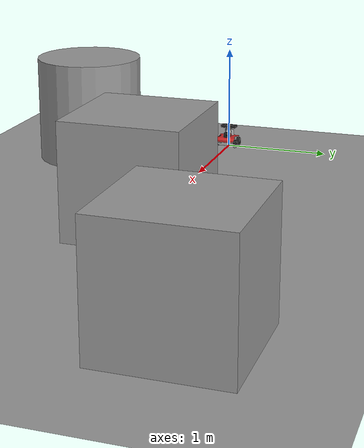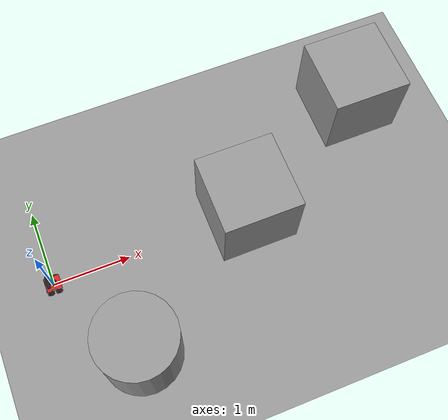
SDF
<sdf version="1.7">
 <world name="default">
  <light name="sun" type="directional">
   <pose>0 0 10 0 -0 0</pose>
   <diffuse>0.8 0.8 0.8 1</diffuse>
   <specular>0.2 0.2 0.2 1</specular>
   <attenuation>
    <range>1000</range>
    <constant>0.9</constant>
    <linear>0.01</linear>
    <quadratic>0.001</quadratic>
   </attenuation>
   <direction>0.5 0.1 -0.9</direction>
   <spot><inner_angle>0</inner_angle><outer_angle>0</outer_angle><falloff>0</falloff></spot>
  </light>
  <scene><ambient>0.4 0.4 0.4 1</ambient><background>0.7 0.7 0.7 1</background><shadows>1</shadows></scene>
  <physics type="ode">
   <max_step_size>0.01</max_step_size>
   <real_time_factor>1</real_time_factor>
   <real_time_update_rate>100</real_time_update_rate>
  </physics>
  <model name="ground_plane_0">
   <static>1</static>
   <link name="link">
    <collision name="collision">
     <geometry><plane><normal>0 0 1</normal><size>100 100</size></plane></geometry>
     <surface><friction><ode><mu>100</mu><mu2>50</mu2></ode></friction></surface>
    </collision>
    <visual name="visual">
     <cast_shadows>0</cast_shadows>
     <geometry><plane><normal>0 0 1</normal><size>100 100</size></plane></geometry>
     <material>
      <script><uri>file://media/materials/scripts/gazebo.material</uri><name>Gazebo/Grey</name></script>
     </material>
    </visual>
    <velocity_decay><linear>0</linear><angular>0</angular></velocity_decay>
   </link>
   <pose>0.497681 0 0 0 -0 0</pose>
  </model>
  <gravity>0 0 -9.8</gravity>
  <magnetic_field>6e-06 2.3e-05 -4.2e-05</magnetic_field>
  <atmosphere type="adiabatic"/>
  <spherical_coordinates>
   <surface_model>EARTH_WGS84</surface_model>
   <latitude_deg>0</latitude_deg>
   <longitude_deg>0</longitude_deg>
   <elevation>0</elevation>
   <heading_deg>0</heading_deg>
  </spherical_coordinates>
  <model name="rosbot">
   <link name="base_link">
    <inertial>
     <pose>-0 0 0.04003 0 -0 0</pose>
     <mass>5.01002</mass>
     <inertia>
      <ixx>0.0100024</ixx>
      <ixy>0.01</ixy>
      <ixz>3.8397e-08</ixz>
      <iyy>0.0100025</iyy>
      <iyz>0.01</iyz>
      <izz>0.01</izz>
     </inertia>
    </inertial>
    <collision name="base_link_fixed_joint_lump__body_link_collision">
     <pose>0 0 0.02 0 -0 0</pose>
     <geometry><box><size>0.2 0.15 0.04</size></box></geometry>
    </collision>
    <collision name="base_link_fixed_joint_lump__camera_link_collision_1">
     <pose>-0.01 0 0.18 0 -0 0</pose>
     <geometry><box><size>0.001 0.001 0.001</size></box></geometry>
    </collision>
    <collision name="base_link_fixed_joint_lump__laser_collision_2">
     <pose>0.02 0 0.058 1.5707 0 1.56682</pose>
     <geometry>
      <mesh>
       <scale>0.001 0.001 0.001</scale>
       <uri>/home/user/catkin_ws/src/rosbot_ros/src/rosbot_description/meshes/rplidar.stl</uri>
      </mesh>
     </geometry>
    </collision>
    <visual name="base_link_fixed_joint_lump__body_link_visual">
     <pose>0 0 -0.02 1.5707 0 1.5707</pose>
     <geometry>
      <mesh>
       <scale>0.001 0.001 0.001</scale>
       <uri>/home/user/catkin_ws/src/rosbot_ros/src/rosbot_description/meshes/box.stl</uri>
      </mesh>
     </geometry>
    </visual>
    <visual name="base_link_fixed_joint_lump__camera_link_visual_1">
     <pose>-0.04 0 0.15 1.5707 0 1.5707</pose>
     <geometry>
      <mesh>
       <scale>0.001 0.001 0.001</scale>
       <uri>/home/user/catkin_ws/src/rosbot_ros/src/rosbot_description/meshes/astra.stl</uri>
      </mesh>
     </geometry>
     <material>
      <script><name>Gazebo/Black</name><uri>file://media/materials/scripts/gazebo.material</uri></script>
     </material>
    </visual>
    <visual name="base_link_fixed_joint_lump__laser_visual_2">
     <pose>0.02 0 0.058 1.5707 0 1.56682</pose>
     <geometry>
      <mesh>
       <scale>0.001 0.001 0.001</scale>
       <uri>/home/user/catkin_ws/src/rosbot_ros/src/rosbot_description/meshes/rplidar.stl</uri>
      </mesh>
     </geometry>
     <material>
      <script><name>Gazebo/Black</name><uri>file://media/materials/scripts/gazebo.material</uri></script>
     </material>
    </visual>
    <visual name="base_link_fixed_joint_lump__top_visual_3">
     <pose>0 0 0.055 1.5707 0 1.5707</pose>
     <geometry>
      <mesh>
       <scale>0.001 0.001 0.001</scale>
       <uri>/home/user/catkin_ws/src/rosbot_ros/src/rosbot_description/meshes/upper.stl</uri>
      </mesh>
     </geometry>
     <material>
      <script><name>Gazebo/Red</name><uri>file://media/materials/scripts/gazebo.material</uri></script>
     </material>
    </visual>
    <sensor name="openni_camera_camera" type="depth">
     <always_on>1</always_on>
     <visualize>1</visualize>
     <camera>
      <horizontal_fov>1.047</horizontal_fov>
      <image><width>640</width><height>480</height><format>R8G8B8</format></image>
      <depth_camera><output>depths</output></depth_camera>
      <clip><near>0.1</near><far>100</far></clip>
     </camera>
     <plugin name="kinect_controller" filename="libgazebo_ros_openni_kinect.so">
      <alwaysOn>1</alwaysOn>
      <updateRate>10.0</updateRate>
      <cameraName>camera</cameraName>
      <frameName>camera_depth_frame</frameName>
      <imageTopicName>rgb/image_raw</imageTopicName>
      <depthImageTopicName>depth/image_raw</depthImageTopicName>
      <pointCloudTopicName>depth/points</pointCloudTopicName>
      <cameraInfoTopicName>rgb/camera_info</cameraInfoTopicName>
      <depthImageCameraInfoTopicName>depth/camera_info</depthImageCameraInfoTopicName>
      <pointCloudCutoff>0.4</pointCloudCutoff>
      <hackBaseline>0.07</hackBaseline>
      <distortionK1>0.0</distortionK1>
      <distortionK2>0.0</distortionK2>
      <distortionK3>0.0</distortionK3>
      <distortionT1>0.0</distortionT1>
      <distortionT2>0.0</distortionT2>
      <CxPrime>0.0</CxPrime>
      <Cx>0.0</Cx>
      <Cy>0.0</Cy>
      <focalLength>0.0</focalLength>
      <robotNamespace>/</robotNamespace>
     </plugin>
     <pose>-0.03 0 0.18 0 -0 0</pose>
    </sensor>
    <sensor name="range_fl" type="ray">
     <update_rate>5</update_rate>
     <ray>
      <scan>
       <horizontal>
        <samples>5</samples>
        <resolution>1</resolution>
        <min_angle>-0.05</min_angle>
        <max_angle>0.05</max_angle>
       </horizontal>
       <vertical>
        <samples>5</samples>
        <resolution>1</resolution>
        <min_angle>-0.05</min_angle>
        <max_angle>0.05</max_angle>
       </vertical>
      </scan>
      <range><min>0.01</min><max>0.9</max><resolution>0.01</resolution></range>
     </ray>
     <plugin name="gazebo_ros_range" filename="libgazebo_ros_range.so">
      <gaussianNoise>0.005</gaussianNoise>
      <alwaysOn>1</alwaysOn>
      <updateRate>5</updateRate>
      <topicName>range/fl</topicName>
      <frameName>range_fl</frameName>
      <fov>0.1</fov>
      <radiation>ultrasound</radiation>
      <robotNamespace>/</robotNamespace>
     </plugin>
     <pose>0.1 0.05 0.01 0 -0 0.13</pose>
    </sensor>
    <sensor name="range_fr" type="ray">
     <update_rate>5</update_rate>
     <ray>
      <scan>
       <horizontal>
        <samples>5</samples>
        <resolution>1</resolution>
        <min_angle>-0.05</min_angle>
        <max_angle>0.05</max_angle>
       </horizontal>
       <vertical>
        <samples>5</samples>
        <resolution>1</resolution>
        <min_angle>-0.05</min_angle>
        <max_angle>0.05</max_angle>
       </vertical>
      </scan>
      <range><min>0.01</min><max>0.9</max><resolution>0.01</resolution></range>
     </ray>
     <plugin name="gazebo_ros_range" filename="libgazebo_ros_range.so">
      <gaussianNoise>0.005</gaussianNoise>
      <alwaysOn>1</alwaysOn>
      <updateRate>5</updateRate>
      <topicName>range/fr</topicName>
      <frameName>range_fr</frameName>
      <fov>0.1</fov>
      <radiation>ultrasound</radiation>
      <robotNamespace>/</robotNamespace>
     </plugin>
     <pose>0.1 -0.05 0.01 0 0 -0.13</pose>
    </sensor>
    <sensor name="range_rl" type="ray">
     <update_rate>5</update_rate>
     <ray>
      <scan>
       <horizontal>
        <samples>5</samples>
        <resolution>1</resolution>
        <min_angle>-0.05</min_angle>
        <max_angle>0.05</max_angle>
       </horizontal>
       <vertical>
        <samples>5</samples>
        <resolution>1</resolution>
        <min_angle>-0.05</min_angle>
        <max_angle>0.05</max_angle>
       </vertical>
      </scan>
      <range><min>0.01</min><max>0.9</max><resolution>0.01</resolution></range>
     </ray>
     <plugin name="gazebo_ros_range" filename="libgazebo_ros_range.so">
      <gaussianNoise>0.005</gaussianNoise>
      <alwaysOn>1</alwaysOn>
      <updateRate>5</updateRate>
      <topicName>range/rl</topicName>
      <frameName>range_rl</frameName>
      <fov>0.1</fov>
      <radiation>ultrasound</radiation>
      <robotNamespace>/</robotNamespace>
     </plugin>
     <pose>-0.1 0.05 0.01 0 -0 3.01</pose>
    </sensor>
    <sensor name="range_rr" type="ray">
     <update_rate>5</update_rate>
     <ray>
      <scan>
       <horizontal>
        <samples>5</samples>
        <resolution>1</resolution>
        <min_angle>-0.05</min_angle>
        <max_angle>0.05</max_angle>
       </horizontal>
       <vertical>
        <samples>5</samples>
        <resolution>1</resolution>
        <min_angle>-0.05</min_angle>
        <max_angle>0.05</max_angle>
       </vertical>
      </scan>
      <range><min>0.01</min><max>0.9</max><resolution>0.01</resolution></range>
     </ray>
     <plugin name="gazebo_ros_range" filename="libgazebo_ros_range.so">
      <gaussianNoise>0.005</gaussianNoise>
      <alwaysOn>1</alwaysOn>
      <updateRate>5</updateRate>
      <topicName>range/rr</topicName>
      <frameName>range_rr</frameName>
      <fov>0.1</fov>
      <radiation>ultrasound</radiation>
      <robotNamespace>/</robotNamespace>
     </plugin>
     <pose>-0.1 -0.05 0.01 0 -0 -3.01319</pose>
    </sensor>
    <sensor name="head_rplidar_sensor" type="ray">
     <visualize>0</visualize>
     <update_rate>40</update_rate>
     <ray>
      <scan>
       <horizontal>
        <samples>720</samples>
        <resolution>1</resolution>
        <min_angle>-3.14159</min_angle>
        <max_angle>3.14159</max_angle>
       </horizontal>
       <vertical><samples>1</samples><min_angle>0</min_angle><max_angle>0</max_angle></vertical>
      </scan>
      <range><min>0.2</min><max>12</max><resolution>0.01</resolution></range>
      <noise><type>gaussian</type><mean>0</mean><stddev>0.01</stddev></noise>
     </ray>
     <plugin name="gazebo_ros_head_rplidar_controller" filename="libgazebo_ros_laser.so">
      <topicName>scan</topicName>
      <frameName>laser</frameName>
      <robotNamespace>/</robotNamespace>
     </plugin>
     <pose>0.02 0 0.058 0 -0 3.14</pose>
    </sensor>
    <sensor name="imu_sensor" type="imu">
     <always_on>1</always_on>
     <update_rate>10</update_rate>
     <visualize>1</visualize>
     <topic>imu</topic>
     <plugin name="imu_plugin" filename="libgazebo_ros_imu_sensor.so">
      <topicName>imu</topicName>
      <bodyName>imu_link</bodyName>
      <updateRateHZ>10.0</updateRateHZ>
      <gaussianNoise>0.0</gaussianNoise>
      <xyzOffset>0 0 0</xyzOffset>
      <rpyOffset>0 0 0</rpyOffset>
      <frameName>imu_link</frameName>
      <robotNamespace>/</robotNamespace>
     </plugin>
    </sensor>
   </link>
   <joint name="front_left_wheel_hinge" type="revolute">
    <pose relative_to="base_link">0.05 0.11 0 0 -0 0</pose>
    <parent>base_link</parent>
    <child>front_left_wheel</child>
    <axis>
     <xyz>0 1 0</xyz>
     <limit><lower>-1e+16</lower><upper>1e+16</upper></limit>
     <dynamics><spring_reference>0</spring_reference><spring_stiffness>0</spring_stiffness></dynamics>
    </axis>
   </joint>
   <link name="front_left_wheel">
    <pose relative_to="front_left_wheel_hinge">0 0 0 0 -0 0</pose>
    <inertial>
     <pose>0 0 0 -0 1.5707 1.5707</pose>
     <mass>0.5</mass>
     <inertia><ixx>0.001</ixx><ixy>0</ixy><ixz>0</ixz><iyy>0.001</iyy><iyz>0</iyz><izz>0.001</izz></inertia>
    </inertial>
    <collision name="front_left_wheel_collision">
     <pose>0 -0.014 0 1.5708 -0 0</pose>
     <geometry><cylinder><length>0.036</length><radius>0.04</radius></cylinder></geometry>
    </collision>
    <visual name="front_left_wheel_visual">
     <pose>0 0 0 0 -0 1.5707</pose>
     <geometry>
      <mesh>
       <scale>0.001 0.001 0.001</scale>
       <uri>/home/user/catkin_ws/src/rosbot_ros/src/rosbot_description/meshes/wheel.stl</uri>
      </mesh>
     </geometry>
     <material>
      <script><name>Gazebo/Black</name><uri>file://media/materials/scripts/gazebo.material</uri></script>
     </material>
    </visual>
   </link>
   <joint name="front_right_wheel_hinge" type="revolute">
    <pose relative_to="base_link">0.05 -0.11 0 0 -0 0</pose>
    <parent>base_link</parent>
    <child>front_right_wheel</child>
    <axis>
     <xyz>0 1 0</xyz>
     <limit><lower>-1e+16</lower><upper>1e+16</upper></limit>
     <dynamics><spring_reference>0</spring_reference><spring_stiffness>0</spring_stiffness></dynamics>
    </axis>
   </joint>
   <link name="front_right_wheel">
    <pose relative_to="front_right_wheel_hinge">0 0 0 0 -0 0</pose>
    <inertial>
     <pose>0 0 0 -0 1.5707 1.5707</pose>
     <mass>0.5</mass>
     <inertia><ixx>0.001</ixx><ixy>0</ixy><ixz>0</ixz><iyy>0.001</iyy><iyz>0</iyz><izz>0.001</izz></inertia>
    </inertial>
    <collision name="front_right_wheel_collision">
     <pose>0 0.014 0 1.5708 -0 0</pose>
     <geometry><cylinder><length>0.036</length><radius>0.04</radius></cylinder></geometry>
    </collision>
    <visual name="front_right_wheel_visual">
     <pose>0 0 0 0 0 -1.5707</pose>
     <geometry>
      <mesh>
       <scale>0.001 0.001 0.001</scale>
       <uri>/home/user/catkin_ws/src/rosbot_ros/src/rosbot_description/meshes/wheel.stl</uri>
      </mesh>
     </geometry>
     <material>
      <script><name>Gazebo/Black</name><uri>file://media/materials/scripts/gazebo.material</uri></script>
     </material>
    </visual>
   </link>
   <joint name="rear_left_wheel_hinge" type="revolute">
    <pose relative_to="base_link">-0.055 0.11 0 0 -0 0</pose>
    <parent>base_link</parent>
    <child>rear_left_wheel</child>
    <axis>
     <xyz>0 1 0</xyz>
     <limit><lower>-1e+16</lower><upper>1e+16</upper></limit>
     <dynamics><spring_reference>0</spring_reference><spring_stiffness>0</spring_stiffness></dynamics>
    </axis>
   </joint>
   <link name="rear_left_wheel">
    <pose relative_to="rear_left_wheel_hinge">0 0 0 0 -0 0</pose>
    <inertial>
     <pose>0 0 0 -0 1.5707 1.5707</pose>
     <mass>0.5</mass>
     <inertia><ixx>0.001</ixx><ixy>0</ixy><ixz>0</ixz><iyy>0.001</iyy><iyz>0</iyz><izz>0.001</izz></inertia>
    </inertial>
    <collision name="rear_left_wheel_collision">
     <pose>0 -0.014 0 1.5708 -0 0</pose>
     <geometry><cylinder><length>0.036</length><radius>0.04</radius></cylinder></geometry>
    </collision>
    <visual name="rear_left_wheel_visual">
     <pose>0 0 0 0 -0 1.5707</pose>
     <geometry>
      <mesh>
       <scale>0.001 0.001 0.001</scale>
       <uri>/home/user/catkin_ws/src/rosbot_ros/src/rosbot_description/meshes/wheel.stl</uri>
      </mesh>
     </geometry>
     <material>
      <script><name>Gazebo/Black</name><uri>file://media/materials/scripts/gazebo.material</uri></script>
     </material>
    </visual>
   </link>
   <joint name="rear_right_wheel_hinge" type="revolute">
    <pose relative_to="base_link">-0.055 -0.11 0 0 -0 0</pose>
    <parent>base_link</parent>
    <child>rear_right_wheel</child>
    <axis>
     <xyz>0 1 0</xyz>
     <limit><lower>-1e+16</lower><upper>1e+16</upper></limit>
     <dynamics><spring_reference>0</spring_reference><spring_stiffness>0</spring_stiffness></dynamics>
    </axis>
   </joint>
   <link name="rear_right_wheel">
    <pose relative_to="rear_right_wheel_hinge">0 0 0 0 -0 0</pose>
    <inertial>
     <pose>0 0 0 -0 1.5707 1.5707</pose>
     <mass>0.5</mass>
     <inertia><ixx>0.001</ixx><ixy>0</ixy><ixz>0</ixz><iyy>0.001</iyy><iyz>0</iyz><izz>0.001</izz></inertia>
    </inertial>
    <collision name="rear_right_wheel_collision">
     <pose>0 0.014 0 1.5708 -0 0</pose>
     <geometry><cylinder><length>0.036</length><radius>0.04</radius></cylinder></geometry>
    </collision>
    <visual name="rear_right_wheel_visual">
     <pose>0 0 0 0 0 -1.5707</pose>
     <geometry>
      <mesh>
       <scale>0.001 0.001 0.001</scale>
       <uri>/home/user/catkin_ws/src/rosbot_ros/src/rosbot_description/meshes/wheel.stl</uri>
      </mesh>
     </geometry>
     <material>
      <script><name>Gazebo/Black</name><uri>file://media/materials/scripts/gazebo.material</uri></script>
     </material>
    </visual>
   </link>
   <plugin name="skid_steer_drive_controller" filename="libgazebo_ros_skid_steer_drive.so">
    <updateRate>10.0</updateRate>
    <robotBaseFrame>/base_link</robotBaseFrame>
    <wheelSeparation>0.20</wheelSeparation>
    <wheelDiameter>0.08</wheelDiameter>
    <torque>5</torque>
    <leftFrontJoint>front_left_wheel_hinge</leftFrontJoint>
    <rightFrontJoint>front_right_wheel_hinge</rightFrontJoint>
    <leftRearJoint>rear_left_wheel_hinge</leftRearJoint>
    <rightRearJoint>rear_right_wheel_hinge</rightRearJoint>
    <topicName>cmd_vel</topicName>
    <commandTopic>cmd_vel</commandTopic>
    <broadcastTF>1</broadcastTF>
    <odometryTopic>odom</odometryTopic>
    <odometryFrame>/odom</odometryFrame>
    <covariance_x>0.000100</covariance_x>
    <covariance_y>0.000100</covariance_y>
    <covariance_yaw>0.010000</covariance_yaw>
    <robotNamespace>/</robotNamespace>
   </plugin>
   <static>0</static>
   <plugin name="gazebo_ros_control" filename="libgazebo_ros_control.so">
    <legacyModeNS>1</legacyModeNS>
    <robotNamespace>/</robotNamespace>
   </plugin>
   <pose>0.001235 -0.01272 0.039978 0.000893 0.00219 -0.019645</pose>
  </model>
  <model name="unit_box">
   <pose>2.59805 0.015804 0.49907 0.0001 -0 1e-06</pose>
   <link name="link">
    <inertial>
     <mass>1</mass>
     <inertia>
      <ixx>0.166667</ixx>
      <ixy>0</ixy>
      <ixz>0</ixz>
      <iyy>0.166667</iyy>
      <iyz>0</iyz>
      <izz>0.166667</izz>
     </inertia>
    </inertial>
    <collision name="collision"><geometry><box><size>1 1 1</size></box></geometry></collision>
    <visual name="visual">
     <geometry><box><size>1 1 1</size></box></geometry>
     <material>
      <script><name>Gazebo/Grey</name><uri>file://media/materials/scripts/gazebo.material</uri></script>
     </material>
    </visual>
   </link>
  </model>
  <model name="unit_box_0">
   <pose>4.48455 1.02078 0.49967 -0.00066 -0 1e-06</pose>
   <link name="link">
    <inertial>
     <mass>1</mass>
     <inertia>
      <ixx>0.166667</ixx>
      <ixy>0</ixy>
      <ixz>0</ixz>
      <iyy>0.166667</iyy>
      <iyz>0</iyz>
      <izz>0.166667</izz>
     </inertia>
    </inertial>
    <collision name="collision"><geometry><box><size>1 1 1</size></box></geometry></collision>
    <visual name="visual">
     <geometry><box><size>1 1 1</size></box></geometry>
     <material>
      <script><name>Gazebo/Grey</name><uri>file://media/materials/scripts/gazebo.material</uri></script>
     </material>
    </visual>
   </link>
  </model>
  <light name="user_spot_light_0" type="spot">
   <pose>7.53902 0.485541 1 0 -0 0</pose>
   <diffuse>0.5 0.5 0.5 1</diffuse>
   <specular>0.1 0.1 0.1 1</specular>
   <direction>0 0 -1</direction>
   <attenuation>
    <range>20</range>
    <constant>0.5</constant>
    <linear>0.01</linear>
    <quadratic>0.001</quadratic>
   </attenuation>
   <cast_shadows>0</cast_shadows>
   <spot><inner_angle>0.6</inner_angle><outer_angle>1</outer_angle><falloff>1</falloff></spot>
  </light>
  <model name="unit_cylinder">
   <pose>0.75532 -1.21336 0.499789 0.000422 0.000422 -8e-06</pose>
   <link name="link">
    <inertial>
     <mass>1</mass>
     <inertia><ixx>0.145833</ixx><ixy>0</ixy><ixz>0</ixz><iyy>0.145833</iyy><iyz>0</iyz><izz>0.125</izz></inertia>
    </inertial>
    <collision name="collision">
     <geometry><cylinder><radius>0.5</radius><length>1</length></cylinder></geometry>
    </collision>
    <visual name="visual">
     <geometry><cylinder><radius>0.5</radius><length>1</length></cylinder></geometry>
     <material>
      <script><name>Gazebo/Grey</name><uri>file://media/materials/scripts/gazebo.material</uri></script>
     </material>
    </visual>
   </link>
  </model>
 </world>
</sdf>
